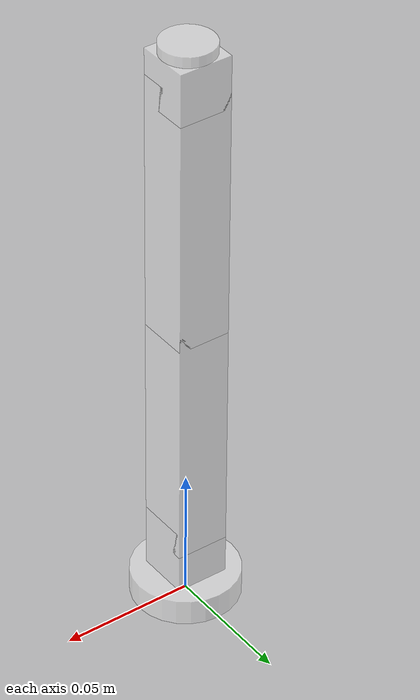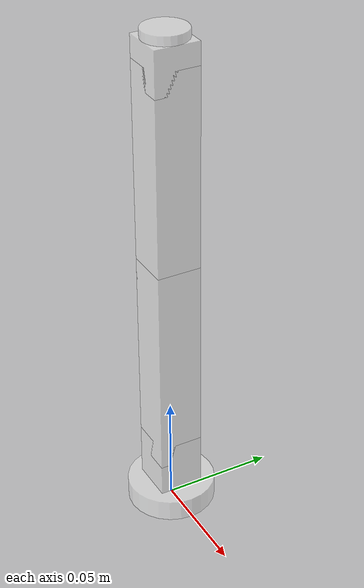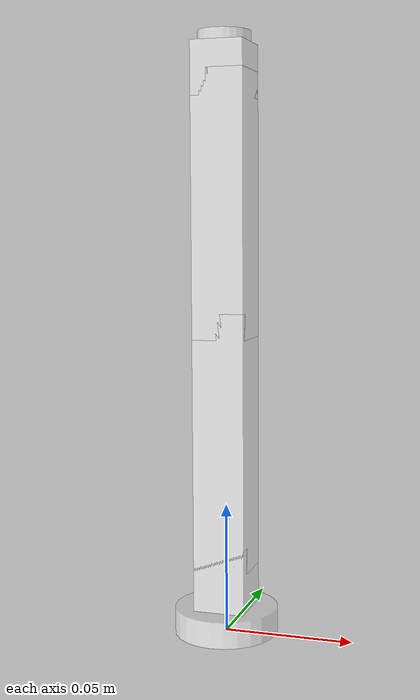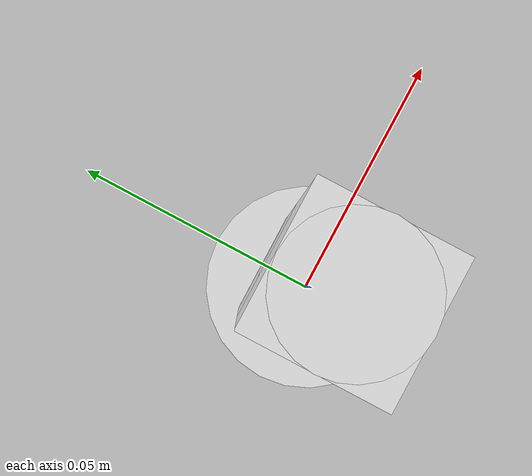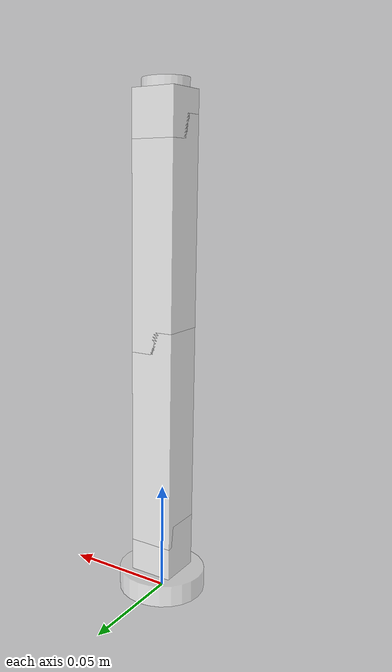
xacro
<?xml version="1.0"?>

<robot xmlns:xacro="http://www.ros.org/wiki/xacro">

  <link name="base">
    <collision>
      <origin rpy="0 0 0" xyz="0 0 0.005"/>
      <geometry>
        <cylinder length="0.01" radius="0.02"/>
      </geometry>
    </collision>
    <visual>
      <origin rpy="0 0 0" xyz="0 0 0.005"/>
      <geometry>
        <cylinder length="0.01" radius="0.02"/>
      </geometry>
      <material name="white">
        <color rgba="1 1 1 0.5"/>
      </material>
    </visual>
    <inertial>
      <origin rpy="0 0 0" xyz="0 0 0.005"/>
      <mass value="1.0"/>
      <inertia ixx="0.00014" ixy="0.0" ixz="0.0"
               iyy="0.00014" iyz="0.0"
               izz="0.000266"/>
    </inertial>
  </link>

  <link name="link1">
    <collision>
      <origin rpy="0 0 0" xyz="0 0 0.01"/>
      <geometry>
        <box size="0.02 0.02 0.03"/>
      </geometry>
    </collision>
    <visual>
      <origin rpy="0 0 0" xyz="0 0 0.01"/>
      <geometry>
        <box size="0.02 0.02 0.03"/>
      </geometry>
      <material name="white">
        <color rgba="1 1 1 0.5"/>
      </material>
    </visual>
    <inertial>
      <origin rpy="0 0 0" xyz="0 0 0"/>
      <mass value="1.0"/>
      <inertia ixx="0.000108" ixy="0.0" ixz="0.0"
               iyy="0.000108" iyz="0.0"
               izz="0.000066"/>
    </inertial>
  </link>

  <link name="link2">
    <collision>
      <origin rpy="0 0 0" xyz="0 0 0.045"/>
      <geometry>
        <box size="0.02 0.02 0.1"/>
      </geometry>
    </collision>
    <visual>
      <origin rpy="0 0 0" xyz="0 0 0.045"/>
      <geometry>
        <box size="0.02 0.02 0.1"/>
      </geometry>
      <material name="gray">
        <color rgba="1 1 1 0.5"/>
      </material>
    </visual>
    <inertial>
      <origin rpy="0 0 0" xyz="0 0 0"/>
      <mass value="0.6"/>
      <inertia ixx="0.00052" ixy="0.0" ixz="0.0"
               iyy="0.00052" iyz="0.0"
               izz="0.00004"/>
    </inertial>
  </link>

  <link name="link3">
    <collision>
      <origin rpy="0 0 0" xyz="0 0 0.045"/>
      <geometry>
        <box size="0.02 0.02 0.1"/>
      </geometry>
    </collision>
    <visual>
      <origin rpy="0 0 0" xyz="0 0 0.045"/>
      <geometry>
        <box size="0.02 0.02 0.1"/>
      </geometry>
      <material name="gray">
        <color rgba="1 1 1 0.5"/>
      </material>
    </visual>
    <inertial>
      <origin rpy="0 0 0" xyz="0 0 0"/>
      <mass value="0.6"/>
      <inertia ixx="0.00052" ixy="0.0" ixz="0.0"
               iyy="0.00052" iyz="0.0"
               izz="0.00004"/>
    </inertial>
  </link>

  <link name="link4">
    <collision>
      <origin rpy="0 0 0" xyz="0 0 0.005"/>
      <geometry>
        <box size="0.02 0.02 0.02"/>
      </geometry>
    </collision>
    <visual>
      <origin rpy="0 0 0" xyz="0 0 0.005"/>
      <geometry>
        <box size="0.02 0.02 0.02"/>
      </geometry>
      <material name="gray">
        <color rgba="1 1 1 0.5"/>
      </material>
    </visual>
    <inertial>
      <origin rpy="0 0 0" xyz="0 0 0"/>
      <mass value="0.3"/>
      <inertia ixx="0.00002" ixy="0.0" ixz="0.0"
               iyy="0.00002" iyz="0.0"
               izz="0.00002"/>
    </inertial>
  </link>

  <link name="link5">
    <collision>
      <origin rpy="0 0 0" xyz="0 0 0.003"/>
      <geometry>
        <cylinder length="0.006" radius="0.01"/>
      </geometry>
    </collision>
    <visual>
      <origin rpy="0 0 0" xyz="0 0 0.003"/>
      <geometry>
        <cylinder length="0.006" radius="0.01"/>
      </geometry>
      <material name="gray">
        <color rgba="1 1 1 0.5"/>
      </material>
    </visual>
    <inertial>
      <origin rpy="0 0 0" xyz="0 0 0"/>
      <mass value="0.2"/>
      <inertia ixx="0.00000726" ixy="0.0" ixz="0.0"
               iyy="0.00000726" iyz="0.0"
               izz="0.0000133"/>
    </inertial>
  </link>

  <joint name="joint1" type="revolute">
    <parent link="base"/>
    <child link="link1"/>
    <axis xyz="0 0 1"/>
    <origin rpy="0 0 0" xyz="0 0 0.01"/>
    <limit effort="10000" lower="-3.14" upper="3.14" velocity="0.5"/>
  </joint>

  <joint name="joint2" type="revolute">
    <parent link="link1"/>
    <child link="link2"/>
    <axis xyz="0 1 0"/>
    <origin rpy="0 0 0" xyz="0 0 0.02"/>
    <limit effort="10000" lower="-1.0" upper="1.0" velocity="0.5"/>
  </joint>

  <joint name="joint3" type="revolute">
    <parent link="link2"/>
    <child link="link3"/>
    <axis xyz="0 1 0"/>
    <origin rpy="0 0 0" xyz="0 0 0.09"/>
    <limit effort="10000" lower="-1.0" upper="1.0" velocity="0.5"/>
  </joint>

  <joint name="joint4" type="revolute">
    <parent link="link3"/>
    <child link="link4"/>
    <axis xyz="0 1 0"/>
    <origin rpy="0 0 0" xyz="0 0 0.09"/>
    <limit effort="10000" lower="-1.0" upper="1.0" velocity="0.5"/>
  </joint>

  <joint name="joint5" type="revolute">
    <parent link="link4"/>
    <child link="link5"/>
    <axis xyz="0 0 1"/>
    <origin rpy="0 0 0" xyz="0 0 0.013"/>
    <limit effort="10000" lower="-3.14" upper="3.14" velocity="0.5"/>
  </joint>

</robot>
